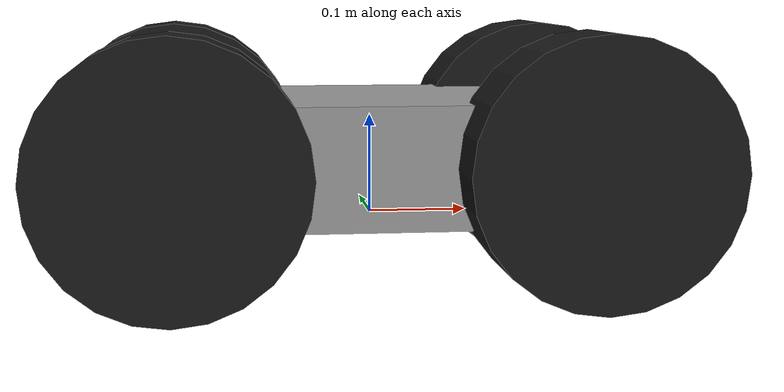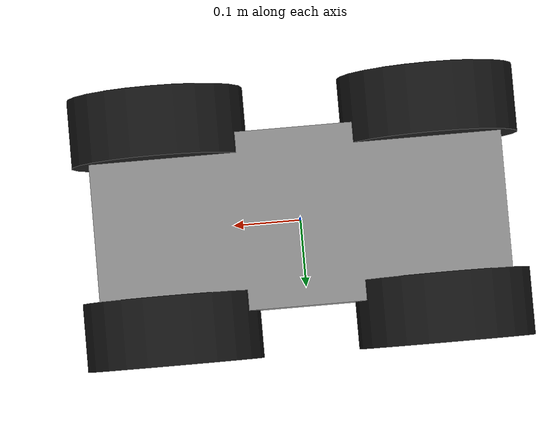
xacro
<?xml version="1.0"?>
<robot name="arzhang4" xmlns:xacro="http://ros.org/wiki/xacro">

  <!-- ================= PARAMETERS ================= -->
  <xacro:property name="base_length" value="0.6" />
  <xacro:property name="base_width" value="0.26" />
  <xacro:property name="base_height" value="0.12" />

  <xacro:property name="wheel_radius" value="0.13" />
  <xacro:property name="wheel_width" value="0.1" />

  <xacro:property name="wheel_x" value="0.2" />
  <xacro:property name="wheel_y" value="0.15" />
  <xacro:property name="wheel_z" value="0.06" />

  <!-- ================= BASE LINK ================= -->
  <link name="base_link">
    <inertial>
      <origin xyz="0 0 ${base_height/2}" rpy="0 0 0" />
      <mass value="12.0" />
      <inertia ixx="0.20" ixy="0.0" ixz="0.0"
        iyy="0.35" iyz="0.0"
        izz="0.45" />
    </inertial>

    <visual>
      <origin xyz="0 0 ${base_height/2}" rpy="0 0 0" />
      <geometry>
        <box size="${base_length} ${base_width} ${base_height}" />
      </geometry>
      <material name="gray">
        <color rgba="0.6 0.6 0.6 1.0" />
      </material>
    </visual>

    <collision>
      <origin xyz="0 0 ${base_height/2}" rpy="0 0 0" />
      <geometry>
        <box size="${base_length} ${base_width} ${base_height}" />
      </geometry>
    </collision>
  </link>

  <!-- ================= WHEEL MACRO ================= -->
  <xacro:macro name="wheel" params="name x y">

    <link name="${name}">
      <inertial>
        <origin xyz="0 0 0" rpy="0 0 0" />
        <mass value="1.0" />
        <inertia ixx="0.001" ixy="0.0" ixz="0.0"
          iyy="0.001" iyz="0.0"
          izz="0.001" />
      </inertial>

      <!-- IMPORTANT: rotate cylinder so its Z-axis becomes Y (wheel axle) -->
      <visual>
        <origin xyz="0 0 0" rpy="1.5708 0 0" />
        <geometry>
          <cylinder radius="${wheel_radius}" length="${wheel_width}" />
        </geometry>
        <material name="black">
          <color rgba="0.1 0.1 0.1 1.0" />
        </material>
      </visual>

      <collision>
        <origin xyz="0 0 0" rpy="1.5708 0 0" />
        <geometry>
          <cylinder radius="${wheel_radius}" length="${wheel_width}" />
        </geometry>
      </collision>
    </link>

    <joint name="${name}_joint" type="continuous">
      <parent link="base_link" />
      <child link="${name}" />
      <origin xyz="${x} ${y} ${wheel_z}" rpy="0 0 0" />
      <!-- Axle along Y -->
      <axis xyz="0 1 0" />
    </joint>

  </xacro:macro>

  <!-- ================= FOUR WHEELS ================= -->
  <xacro:wheel name="wheel_fl" x="${ wheel_x}" y="${ wheel_y}" />
  <xacro:wheel name="wheel_fr" x="${ wheel_x}" y="${-wheel_y}" />
  <xacro:wheel name="wheel_rl" x="${-wheel_x}" y="${ wheel_y}" />
  <xacro:wheel name="wheel_rr" x="${-wheel_x}" y="${-wheel_y}" />

  <!-- ================= GAZEBO DIFF DRIVE ================= -->
  <gazebo>
    <plugin filename="gz-sim-diff-drive-system"
      name="gz::sim::systems::DiffDrive">

      <left_joint>wheel_fl_joint</left_joint>
      <left_joint>wheel_rl_joint</left_joint>

      <right_joint>wheel_fr_joint</right_joint>
      <right_joint>wheel_rr_joint</right_joint>

      <wheel_separation>0.3</wheel_separation>
      <wheel_radius>0.1</wheel_radius>

      <topic>cmd_vel</topic>
      <odom_topic>odom</odom_topic>

      <odom_frame>odom</odom_frame>
      <robot_base_frame>base_link</robot_base_frame>

      <publish_tf>true</publish_tf>

    </plugin>
  </gazebo>

</robot>
